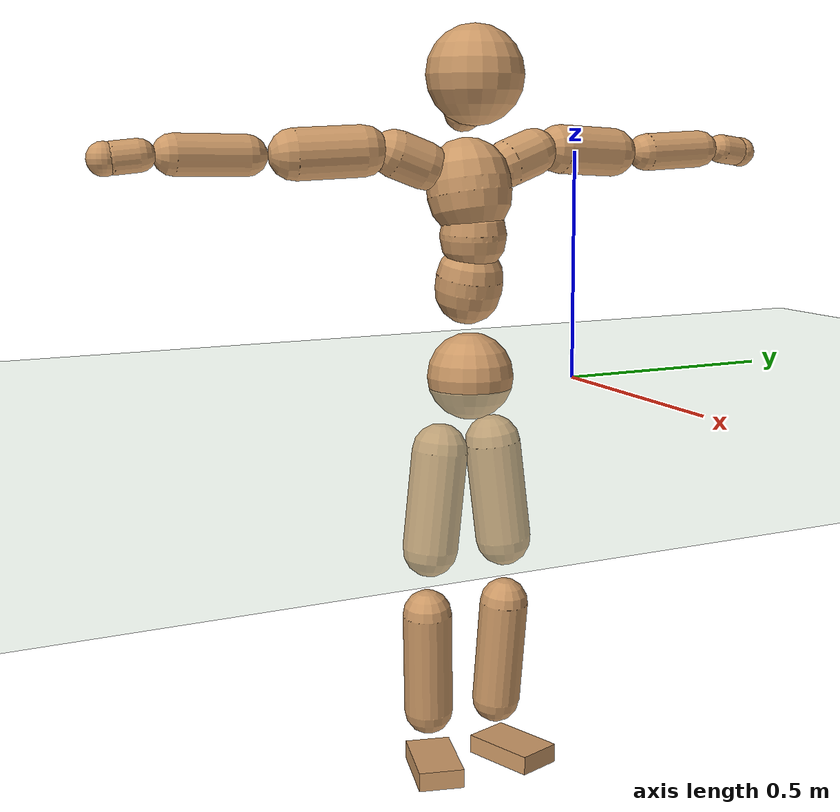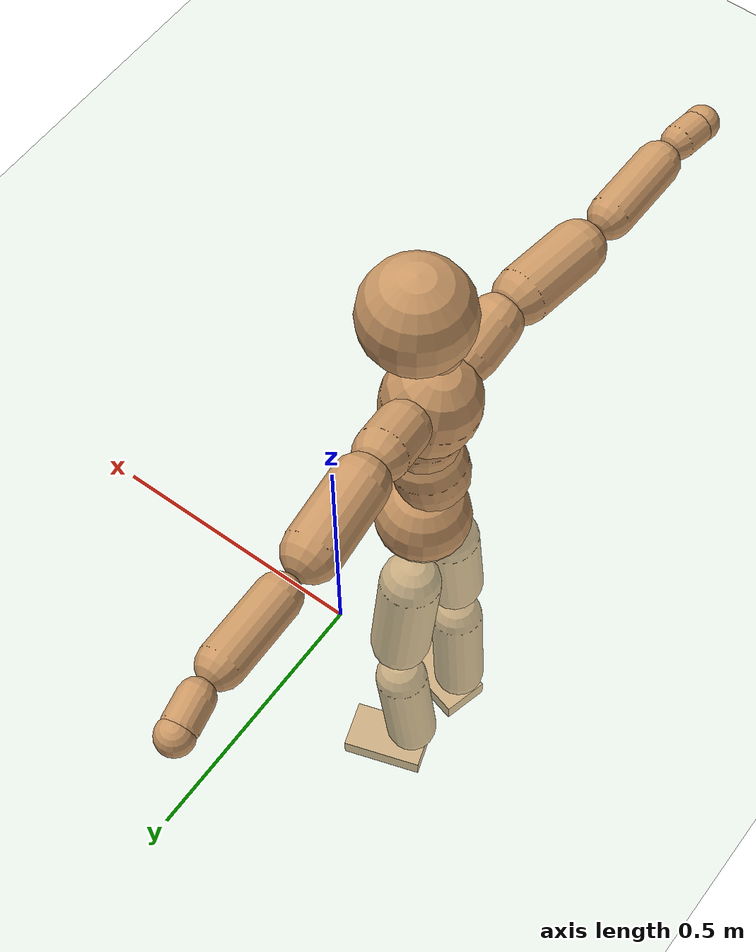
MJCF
<mujoco model="humanoid">
  <compiler coordinate="local"/>
  <default>
    <joint damping="0.0" armature="0.01" stiffness="0.0" limited="true"/>
    <geom conaffinity="1" condim="3" contype="7" margin="0.001" rgba="0.8 0.6 .4 1"/>
  </default>
  <asset>
    <texture type="skybox" builtin="gradient" rgb1=".4 .5 .6" rgb2="0 0 0" width="100" height="100"/>
    <texture builtin="flat" height="1278" mark="cross" markrgb="1 1 1" name="texgeom" random="0.01" rgb1="0.8 0.6 0.4" rgb2="0.8 0.6 0.4" type="cube" width="127"/>
    <texture builtin="checker" height="100" name="texplane" rgb1="0 0 0" rgb2="0.8 0.8 0.8" type="2d" width="100"/>
    <material name="MatPlane" reflectance="0.5" shininess="1" specular="1" texrepeat="60 60" texture="texplane"/>
    <material name="geom" texture="texgeom" texuniform="true"/>
  </asset>
  <worldbody>
    <light cutoff="100" diffuse="1 1 1" dir="-0 0 -1.3" directional="true" exponent="1" pos="0 0 1.3" specular=".1 .1 .1"/>
    <geom conaffinity="1" condim="3" name="floor" pos="0 0 0" rgba="0.8 0.9 0.8 1" size="100 100 .2" type="plane" material="MatPlane"/>
    <body name="Pelvis" pos="-0.0042 -0.2535 0.0228">
      <freejoint name="Pelvis"/>
      <geom type="sphere" contype="1" conaffinity="1" density="500" size="0.0943" pos="0.0000 0.0000 0.0000" name="Pelvis"/>
      <body name="L_Hip" pos="-0.0202 0.056 -0.0825">
        <joint name="L_Hip_x" type="hinge" pos="0 0 0" axis="1 0 0" stiffness="800" damping="80" armature="0.02" range="-180.0000 180.0000"/>
        <joint name="L_Hip_y" type="hinge" pos="0 0 0" axis="0 1 0" stiffness="800" damping="80" armature="0.02" range="-180.0000 180.0000"/>
        <joint name="L_Hip_z" type="hinge" pos="0 0 0" axis="0 0 1" stiffness="800" damping="80" armature="0.02" range="-180.0000 180.0000"/>
        <geom type="capsule" contype="1" conaffinity="1" density="500" fromto="0.0019 0.0082 -0.0740 0.0077 0.0327 -0.2959" size="0.0614" name="L_Hip"/>
        <body name="L_Knee" pos="0.0097 0.0409 -0.3698">
          <joint name="L_Knee_x" type="hinge" pos="0 0 0" axis="1 0 0" stiffness="800" damping="80" armature="0.02" range="-180.0000 180.0000"/>
          <joint name="L_Knee_y" type="hinge" pos="0 0 0" axis="0 1 0" stiffness="800" damping="80" armature="0.02" range="-180.0000 180.0000"/>
          <joint name="L_Knee_z" type="hinge" pos="0 0 0" axis="0 0 1" stiffness="800" damping="80" armature="0.02" range="-180.0000 180.0000"/>
          <geom type="capsule" contype="1" conaffinity="1" density="500" fromto="-0.0073 -0.0028 -0.0797 -0.0293 -0.0110 -0.3186" size="0.0544" name="L_Knee"/>
          <body name="L_Ankle" pos="-0.0366 -0.0138 -0.3983">
            <joint name="L_Ankle_x" type="hinge" pos="0 0 0" axis="1 0 0" stiffness="800" damping="80" armature="0.02" range="-180.0000 180.0000"/>
            <joint name="L_Ankle_y" type="hinge" pos="0 0 0" axis="0 1 0" stiffness="800" damping="80" armature="0.02" range="-180.0000 180.0000"/>
            <joint name="L_Ankle_z" type="hinge" pos="0 0 0" axis="0 0 1" stiffness="800" damping="80" armature="0.02" range="-180.0000 180.0000"/>
            <geom type="box" contype="1" conaffinity="1" density="500" pos="0.0590 0.0195 -0.0289" size="0.0858 0.0507 0.0211" quat="0.9873 0.0000 0.0000 0.1589" name="L_Ankle"/>
            <body name="L_Toe" pos="0.118 0.039 -0.0577">
              <joint name="L_Toe_x" type="hinge" pos="0 0 0" axis="1 0 0" stiffness="500" damping="50" armature="0.02" range="-180.0000 180.0000"/>
              <joint name="L_Toe_y" type="hinge" pos="0 0 0" axis="0 1 0" stiffness="500" damping="50" armature="0.02" range="-180.0000 180.0000"/>
              <joint name="L_Toe_z" type="hinge" pos="0 0 0" axis="0 0 1" stiffness="500" damping="50" armature="0.02" range="-180.0000 180.0000"/>
              <geom type="box" contype="1" conaffinity="1" density="500" pos="0.0000 0.0000 0.0284" size="0.0011 0.0025 0.001" quat="0.9865 0.0000 0.0000 0.1639" name="L_Toe"/>
            </body>
          </body>
        </body>
      </body>
      <body name="R_Hip" pos="-0.016 -0.0579 -0.0905">
        <joint name="R_Hip_x" type="hinge" pos="0 0 0" axis="1 0 0" stiffness="800" damping="80" armature="0.02" range="-180.0000 180.0000"/>
        <joint name="R_Hip_y" type="hinge" pos="0 0 0" axis="0 1 0" stiffness="800" damping="80" armature="0.02" range="-180.0000 180.0000"/>
        <joint name="R_Hip_z" type="hinge" pos="0 0 0" axis="0 0 1" stiffness="800" damping="80" armature="0.02" range="-180.0000 180.0000"/>
        <geom type="capsule" contype="1" conaffinity="1" density="500" fromto="-0.0006 -0.0080 -0.0732 -0.0024 -0.0318 -0.2929" size="0.0608" name="R_Hip"/>
        <body name="R_Knee" pos="-0.003 -0.0398 -0.3661">
          <joint name="R_Knee_x" type="hinge" pos="0 0 0" axis="1 0 0" stiffness="800" damping="80" armature="0.02" range="-180.0000 180.0000"/>
          <joint name="R_Knee_y" type="hinge" pos="0 0 0" axis="0 1 0" stiffness="800" damping="80" armature="0.02" range="-180.0000 180.0000"/>
          <joint name="R_Knee_z" type="hinge" pos="0 0 0" axis="0 0 1" stiffness="800" damping="80" armature="0.02" range="-180.0000 180.0000"/>
          <geom type="capsule" contype="1" conaffinity="1" density="500" fromto="-0.0069 0.0036 -0.0783 -0.0274 0.0146 -0.3134" size="0.0546" name="R_Knee"/>
          <body name="R_Ankle" pos="-0.0343 0.0182 -0.3917">
            <joint name="R_Ankle_x" type="hinge" pos="0 0 0" axis="1 0 0" stiffness="800" damping="80" armature="0.02" range="-180.0000 180.0000"/>
            <joint name="R_Ankle_y" type="hinge" pos="0 0 0" axis="0 1 0" stiffness="800" damping="80" armature="0.02" range="-180.0000 180.0000"/>
            <joint name="R_Ankle_z" type="hinge" pos="0 0 0" axis="0 0 1" stiffness="800" damping="80" armature="0.02" range="-180.0000 180.0000"/>
            <geom type="box" contype="1" conaffinity="1" density="500" pos="0.0633 -0.0162 -0.0290" size="0.0878 0.0501 0.0211" quat="0.9921 0.0000 0.0000 -0.1253" name="R_Ankle"/>
            <body name="R_Toe" pos="0.1266 -0.0325 -0.0581">
              <joint name="R_Toe_x" type="hinge" pos="0 0 0" axis="1 0 0" stiffness="500" damping="50" armature="0.02" range="-180.0000 180.0000"/>
              <joint name="R_Toe_y" type="hinge" pos="0 0 0" axis="0 1 0" stiffness="500" damping="50" armature="0.02" range="-180.0000 180.0000"/>
              <joint name="R_Toe_z" type="hinge" pos="0 0 0" axis="0 0 1" stiffness="500" damping="50" armature="0.02" range="-180.0000 180.0000"/>
              <geom type="box" contype="1" conaffinity="1" density="500" pos="0.0000 0.0000 0.0296" size="0.001 0.0025 0.0011" quat="0.9932 0.0000 0.0000 -0.1162" name="R_Toe"/>
            </body>
          </body>
        </body>
      </body>
      <body name="Torso" pos="-0.0345 0.0041 0.1243">
        <joint name="Torso_x" type="hinge" pos="0 0 0" axis="1 0 0" stiffness="1000" damping="100" armature="0.02" range="-180.0000 180.0000"/>
        <joint name="Torso_y" type="hinge" pos="0 0 0" axis="0 1 0" stiffness="1000" damping="100" armature="0.02" range="-180.0000 180.0000"/>
        <joint name="Torso_z" type="hinge" pos="0 0 0" axis="0 0 1" stiffness="1000" damping="100" armature="0.02" range="-180.0000 180.0000"/>
        <geom type="capsule" contype="1" conaffinity="1" density="500" fromto="0.0175 0.0034 0.0881 0.0116 0.0022 0.0587" size="0.07254" name="Torso"/>
        <body name="Spine" pos="0.0291 0.0056 0.1468">
          <joint name="Spine_x" type="hinge" pos="0 0 0" axis="1 0 0" stiffness="1000" damping="100" armature="0.02" range="-180.0000 180.0000"/>
          <joint name="Spine_y" type="hinge" pos="0 0 0" axis="0 1 0" stiffness="1000" damping="100" armature="0.02" range="-180.0000 180.0000"/>
          <joint name="Spine_z" type="hinge" pos="0 0 0" axis="0 0 1" stiffness="1000" damping="100" armature="0.02" range="-180.0000 180.0000"/>
          <geom type="capsule" contype="1" conaffinity="1" density="500" fromto="0.0021 -0.0009 0.0359 0.0014 -0.0006 0.0239" size="0.071331" name="Spine"/>
          <body name="Chest" pos="0.0035 -0.0015 0.0598">
            <joint name="Chest_x" type="hinge" pos="0 0 0" axis="1 0 0" stiffness="1000" damping="100" armature="0.02" range="-180.0000 180.0000"/>
            <joint name="Chest_y" type="hinge" pos="0 0 0" axis="0 1 0" stiffness="1000" damping="100" armature="0.02" range="-180.0000 180.0000"/>
            <joint name="Chest_z" type="hinge" pos="0 0 0" axis="0 0 1" stiffness="1000" damping="100" armature="0.02" range="-180.0000 180.0000"/>
            <geom type="capsule" contype="1" conaffinity="1" density="500" fromto="-0.0151 -0.0051 0.0864 -0.0101 -0.0034 0.0576" size="0.091326" name="Chest"/>
            <body name="Neck" pos="-0.0324 -0.0141 0.2108">
              <joint name="Neck_x" type="hinge" pos="0 0 0" axis="1 0 0" stiffness="500" damping="50" armature="0.02" range="-180.0000 180.0000"/>
              <joint name="Neck_y" type="hinge" pos="0 0 0" axis="0 1 0" stiffness="500" damping="50" armature="0.02" range="-180.0000 180.0000"/>
              <joint name="Neck_z" type="hinge" pos="0 0 0" axis="0 0 1" stiffness="500" damping="50" armature="0.02" range="-180.0000 180.0000"/>
              <geom type="capsule" contype="1" conaffinity="1" density="500" fromto="0.0102 0.0019 0.0186 0.0410 0.0076 0.0744" size="0.041571" name="Neck"/>
              <body name="Head" pos="0.0512 0.0094 0.093">
                <joint name="Head_x" type="hinge" pos="0 0 0" axis="1 0 0" stiffness="500" damping="50" armature="0.02" range="-180.0000 180.0000"/>
                <joint name="Head_y" type="hinge" pos="0 0 0" axis="0 1 0" stiffness="500" damping="50" armature="0.02" range="-180.0000 180.0000"/>
                <joint name="Head_z" type="hinge" pos="0 0 0" axis="0 0 1" stiffness="500" damping="50" armature="0.02" range="-180.0000 180.0000"/>
                <geom type="sphere" contype="1" conaffinity="1" density="500" size="0.1044" pos="0.0000 0.0000 0.0000" name="Head"/>
              </body>
            </body>
            <body name="L_Thorax" pos="-0.0186 0.0679 0.1114">
              <joint name="L_Thorax_x" type="hinge" pos="0 0 0" axis="1 0 0" stiffness="500" damping="50" armature="0.02" range="-180.0000 180.0000"/>
              <joint name="L_Thorax_y" type="hinge" pos="0 0 0" axis="0 1 0" stiffness="500" damping="50" armature="0.02" range="-180.0000 180.0000"/>
              <joint name="L_Thorax_z" type="hinge" pos="0 0 0" axis="0 0 1" stiffness="500" damping="50" armature="0.02" range="-180.0000 180.0000"/>
              <geom type="capsule" contype="1" conaffinity="1" density="500" fromto="-0.0036 0.0238 0.0083 -0.0145 0.0951 0.0332" size="0.0511" name="L_Thorax"/>
              <body name="L_Shoulder" pos="-0.0182 0.1188 0.0415">
                <joint name="L_Shoulder_x" type="hinge" pos="0 0 0" axis="1 0 0" stiffness="500" damping="50" armature="0.02" range="-720.0000 720.0000"/>
                <joint name="L_Shoulder_y" type="hinge" pos="0 0 0" axis="0 1 0" stiffness="500" damping="50" armature="0.02" range="-720.0000 720.0000"/>
                <joint name="L_Shoulder_z" type="hinge" pos="0 0 0" axis="0 0 1" stiffness="500" damping="50" armature="0.02" range="-720.0000 720.0000"/>
                <geom type="capsule" contype="1" conaffinity="1" density="500" fromto="-0.0041 0.0472 -0.0026 -0.0164 0.1888 -0.0105" size="0.0537" name="L_Shoulder"/>
                <body name="L_Elbow" pos="-0.0205 0.236 -0.0131">
                  <joint name="L_Elbow_x" type="hinge" pos="0 0 0" axis="1 0 0" stiffness="500" damping="50" armature="0.02" range="-720.0000 720.0000"/>
                  <joint name="L_Elbow_y" type="hinge" pos="0 0 0" axis="0 1 0" stiffness="500" damping="50" armature="0.02" range="-720.0000 720.0000"/>
                  <joint name="L_Elbow_z" type="hinge" pos="0 0 0" axis="0 0 1" stiffness="500" damping="50" armature="0.02" range="-720.0000 720.0000"/>
                  <geom type="capsule" contype="1" conaffinity="1" density="500" fromto="-0.0015 0.0492 0.0021 -0.0058 0.1969 0.0086" size="0.0419" name="L_Elbow"/>
                  <body name="L_Wrist" pos="-0.0073 0.2461 0.0107">
                    <joint name="L_Wrist_x" type="hinge" pos="0 0 0" axis="1 0 0" stiffness="300" damping="30" armature="0.02" range="-180.0000 180.0000"/>
                    <joint name="L_Wrist_y" type="hinge" pos="0 0 0" axis="0 1 0" stiffness="300" damping="30" armature="0.02" range="-180.0000 180.0000"/>
                    <joint name="L_Wrist_z" type="hinge" pos="0 0 0" axis="0 0 1" stiffness="300" damping="30" armature="0.02" range="-180.0000 180.0000"/>
                    <geom type="capsule" contype="1" conaffinity="1" density="500" fromto="-0.0029 0.0165 -0.0021 -0.0117 0.0659 -0.0083" size="0.0329" name="L_Wrist"/>
                    <body name="L_Hand" pos="-0.0146 0.0824 -0.0103">
                      <joint name="L_Hand_x" type="hinge" pos="0 0 0" axis="1 0 0" stiffness="300" damping="30" armature="0.02" range="-180.0000 180.0000"/>
                      <joint name="L_Hand_y" type="hinge" pos="0 0 0" axis="0 1 0" stiffness="300" damping="30" armature="0.02" range="-180.0000 180.0000"/>
                      <joint name="L_Hand_z" type="hinge" pos="0 0 0" axis="0 0 1" stiffness="300" damping="30" armature="0.02" range="-180.0000 180.0000"/>
                      <geom type="sphere" contype="1" conaffinity="1" density="500" size="0.0340" pos="0.0000 0.0000 0.0000" name="L_Hand"/>
                    </body>
                  </body>
                </body>
              </body>
            </body>
            <body name="R_Thorax" pos="-0.0245 -0.0791 0.1096">
              <joint name="R_Thorax_x" type="hinge" pos="0 0 0" axis="1 0 0" stiffness="500" damping="50" armature="0.02" range="-180.0000 180.0000"/>
              <joint name="R_Thorax_y" type="hinge" pos="0 0 0" axis="0 1 0" stiffness="500" damping="50" armature="0.02" range="-180.0000 180.0000"/>
              <joint name="R_Thorax_z" type="hinge" pos="0 0 0" axis="0 0 1" stiffness="500" damping="50" armature="0.02" range="-180.0000 180.0000"/>
              <geom type="capsule" contype="1" conaffinity="1" density="500" fromto="-0.0016 -0.0217 0.0084 -0.0065 -0.0867 0.0336" size="0.0509" name="R_Thorax"/>
              <body name="R_Shoulder" pos="-0.0081 -0.1084 0.042">
                <joint name="R_Shoulder_x" type="hinge" pos="0 0 0" axis="1 0 0" stiffness="500" damping="50" armature="0.02" range="-720.0000 720.0000"/>
                <joint name="R_Shoulder_y" type="hinge" pos="0 0 0" axis="0 1 0" stiffness="500" damping="50" armature="0.02" range="-720.0000 720.0000"/>
                <joint name="R_Shoulder_z" type="hinge" pos="0 0 0" axis="0 0 1" stiffness="500" damping="50" armature="0.02" range="-720.0000 720.0000"/>
                <geom type="capsule" contype="1" conaffinity="1" density="500" fromto="-0.0060 -0.0475 -0.0022 -0.0241 -0.1898 -0.0087" size="0.0538" name="R_Shoulder"/>
                <body name="R_Elbow" pos="-0.0301 -0.2373 -0.0109">
                  <joint name="R_Elbow_x" type="hinge" pos="0 0 0" axis="1 0 0" stiffness="500" damping="50" armature="0.02" range="-720.0000 720.0000"/>
                  <joint name="R_Elbow_y" type="hinge" pos="0 0 0" axis="0 1 0" stiffness="500" damping="50" armature="0.02" range="-720.0000 720.0000"/>
                  <joint name="R_Elbow_z" type="hinge" pos="0 0 0" axis="0 0 1" stiffness="500" damping="50" armature="0.02" range="-720.0000 720.0000"/>
                  <geom type="capsule" contype="1" conaffinity="1" density="500" fromto="-0.0011 -0.0495 0.0009 -0.0044 -0.1981 0.0035" size="0.0421" name="R_Elbow"/>
                  <body name="R_Wrist" pos="-0.0055 -0.2477 0.0043">
                    <joint name="R_Wrist_x" type="hinge" pos="0 0 0" axis="1 0 0" stiffness="300" damping="30" armature="0.02" range="-180.0000 180.0000"/>
                    <joint name="R_Wrist_y" type="hinge" pos="0 0 0" axis="0 1 0" stiffness="300" damping="30" armature="0.02" range="-180.0000 180.0000"/>
                    <joint name="R_Wrist_z" type="hinge" pos="0 0 0" axis="0 0 1" stiffness="300" damping="30" armature="0.02" range="-180.0000 180.0000"/>
                    <geom type="capsule" contype="1" conaffinity="1" density="500" fromto="-0.0019 -0.0167 -0.0016 -0.0075 -0.0667 -0.0065" size="0.033" name="R_Wrist"/>
                    <body name="R_Hand" pos="-0.0093 -0.0834 -0.0081">
                      <joint name="R_Hand_x" type="hinge" pos="0 0 0" axis="1 0 0" stiffness="300" damping="30" armature="0.02" range="-180.0000 180.0000"/>
                      <joint name="R_Hand_y" type="hinge" pos="0 0 0" axis="0 1 0" stiffness="300" damping="30" armature="0.02" range="-180.0000 180.0000"/>
                      <joint name="R_Hand_z" type="hinge" pos="0 0 0" axis="0 0 1" stiffness="300" damping="30" armature="0.02" range="-180.0000 180.0000"/>
                      <geom type="sphere" contype="1" conaffinity="1" density="500" size="0.0341" pos="0.0000 0.0000 0.0000" name="R_Hand"/>
                    </body>
                  </body>
                </body>
              </body>
            </body>
          </body>
        </body>
      </body>
    </body>
  </worldbody>
  <actuator>
    <motor name="L_Hip_x" joint="L_Hip_x" gear="500"/>
    <motor name="L_Hip_y" joint="L_Hip_y" gear="500"/>
    <motor name="L_Hip_z" joint="L_Hip_z" gear="500"/>
    <motor name="L_Knee_x" joint="L_Knee_x" gear="500"/>
    <motor name="L_Knee_y" joint="L_Knee_y" gear="500"/>
    <motor name="L_Knee_z" joint="L_Knee_z" gear="500"/>
    <motor name="L_Ankle_x" joint="L_Ankle_x" gear="500"/>
    <motor name="L_Ankle_y" joint="L_Ankle_y" gear="500"/>
    <motor name="L_Ankle_z" joint="L_Ankle_z" gear="500"/>
    <motor name="L_Toe_x" joint="L_Toe_x" gear="500"/>
    <motor name="L_Toe_y" joint="L_Toe_y" gear="500"/>
    <motor name="L_Toe_z" joint="L_Toe_z" gear="500"/>
    <motor name="R_Hip_x" joint="R_Hip_x" gear="500"/>
    <motor name="R_Hip_y" joint="R_Hip_y" gear="500"/>
    <motor name="R_Hip_z" joint="R_Hip_z" gear="500"/>
    <motor name="R_Knee_x" joint="R_Knee_x" gear="500"/>
    <motor name="R_Knee_y" joint="R_Knee_y" gear="500"/>
    <motor name="R_Knee_z" joint="R_Knee_z" gear="500"/>
    <motor name="R_Ankle_x" joint="R_Ankle_x" gear="500"/>
    <motor name="R_Ankle_y" joint="R_Ankle_y" gear="500"/>
    <motor name="R_Ankle_z" joint="R_Ankle_z" gear="500"/>
    <motor name="R_Toe_x" joint="R_Toe_x" gear="500"/>
    <motor name="R_Toe_y" joint="R_Toe_y" gear="500"/>
    <motor name="R_Toe_z" joint="R_Toe_z" gear="500"/>
    <motor name="Torso_x" joint="Torso_x" gear="500"/>
    <motor name="Torso_y" joint="Torso_y" gear="500"/>
    <motor name="Torso_z" joint="Torso_z" gear="500"/>
    <motor name="Spine_x" joint="Spine_x" gear="500"/>
    <motor name="Spine_y" joint="Spine_y" gear="500"/>
    <motor name="Spine_z" joint="Spine_z" gear="500"/>
    <motor name="Chest_x" joint="Chest_x" gear="500"/>
    <motor name="Chest_y" joint="Chest_y" gear="500"/>
    <motor name="Chest_z" joint="Chest_z" gear="500"/>
    <motor name="Neck_x" joint="Neck_x" gear="500"/>
    <motor name="Neck_y" joint="Neck_y" gear="500"/>
    <motor name="Neck_z" joint="Neck_z" gear="500"/>
    <motor name="Head_x" joint="Head_x" gear="500"/>
    <motor name="Head_y" joint="Head_y" gear="500"/>
    <motor name="Head_z" joint="Head_z" gear="500"/>
    <motor name="L_Thorax_x" joint="L_Thorax_x" gear="500"/>
    <motor name="L_Thorax_y" joint="L_Thorax_y" gear="500"/>
    <motor name="L_Thorax_z" joint="L_Thorax_z" gear="500"/>
    <motor name="L_Shoulder_x" joint="L_Shoulder_x" gear="500"/>
    <motor name="L_Shoulder_y" joint="L_Shoulder_y" gear="500"/>
    <motor name="L_Shoulder_z" joint="L_Shoulder_z" gear="500"/>
    <motor name="L_Elbow_x" joint="L_Elbow_x" gear="500"/>
    <motor name="L_Elbow_y" joint="L_Elbow_y" gear="500"/>
    <motor name="L_Elbow_z" joint="L_Elbow_z" gear="500"/>
    <motor name="L_Wrist_x" joint="L_Wrist_x" gear="500"/>
    <motor name="L_Wrist_y" joint="L_Wrist_y" gear="500"/>
    <motor name="L_Wrist_z" joint="L_Wrist_z" gear="500"/>
    <motor name="L_Hand_x" joint="L_Hand_x" gear="500"/>
    <motor name="L_Hand_y" joint="L_Hand_y" gear="500"/>
    <motor name="L_Hand_z" joint="L_Hand_z" gear="500"/>
    <motor name="R_Thorax_x" joint="R_Thorax_x" gear="500"/>
    <motor name="R_Thorax_y" joint="R_Thorax_y" gear="500"/>
    <motor name="R_Thorax_z" joint="R_Thorax_z" gear="500"/>
    <motor name="R_Shoulder_x" joint="R_Shoulder_x" gear="500"/>
    <motor name="R_Shoulder_y" joint="R_Shoulder_y" gear="500"/>
    <motor name="R_Shoulder_z" joint="R_Shoulder_z" gear="500"/>
    <motor name="R_Elbow_x" joint="R_Elbow_x" gear="500"/>
    <motor name="R_Elbow_y" joint="R_Elbow_y" gear="500"/>
    <motor name="R_Elbow_z" joint="R_Elbow_z" gear="500"/>
    <motor name="R_Wrist_x" joint="R_Wrist_x" gear="500"/>
    <motor name="R_Wrist_y" joint="R_Wrist_y" gear="500"/>
    <motor name="R_Wrist_z" joint="R_Wrist_z" gear="500"/>
    <motor name="R_Hand_x" joint="R_Hand_x" gear="500"/>
    <motor name="R_Hand_y" joint="R_Hand_y" gear="500"/>
    <motor name="R_Hand_z" joint="R_Hand_z" gear="500"/>
  </actuator>
  <contact>
    <exclude body1="Torso" body2="Chest"/>
    <exclude body1="Head" body2="Chest"/>
    <exclude body1="R_Knee" body2="R_Toe"/>
    <exclude body1="R_Knee" body2="L_Ankle"/>
    <exclude body1="R_Knee" body2="L_Toe"/>
    <exclude body1="L_Knee" body2="L_Toe"/>
    <exclude body1="L_Knee" body2="R_Ankle"/>
    <exclude body1="L_Knee" body2="R_Toe"/>
    <exclude body1="L_Shoulder" body2="Chest"/>
    <exclude body1="R_Shoulder" body2="Chest"/>
  </contact>
  <sensor/>
  <size njmax="700" nconmax="700"/>
</mujoco>
